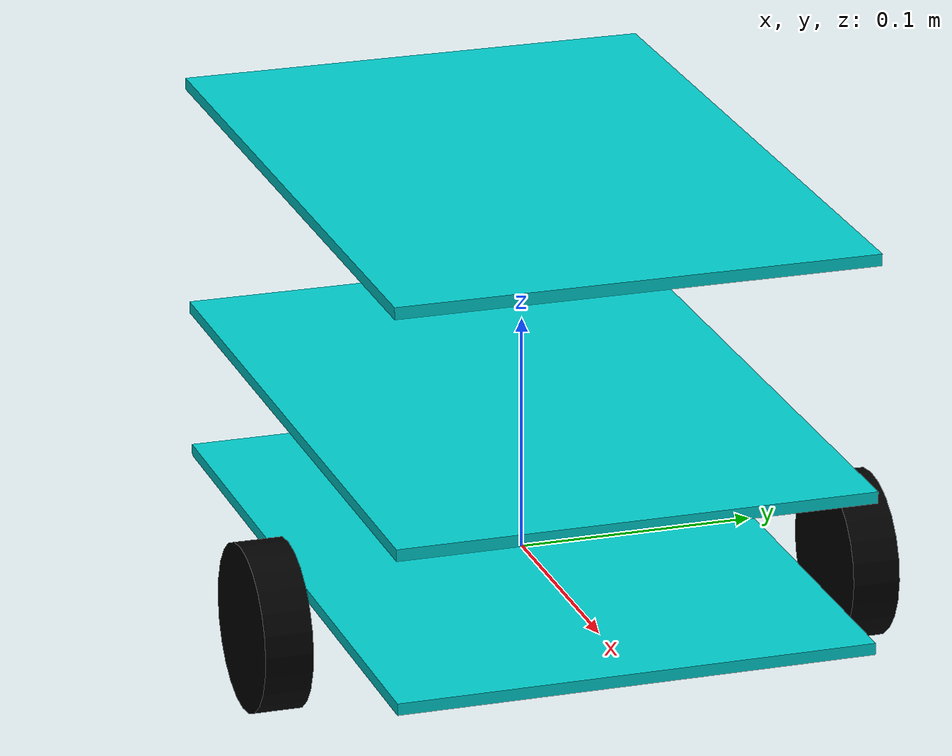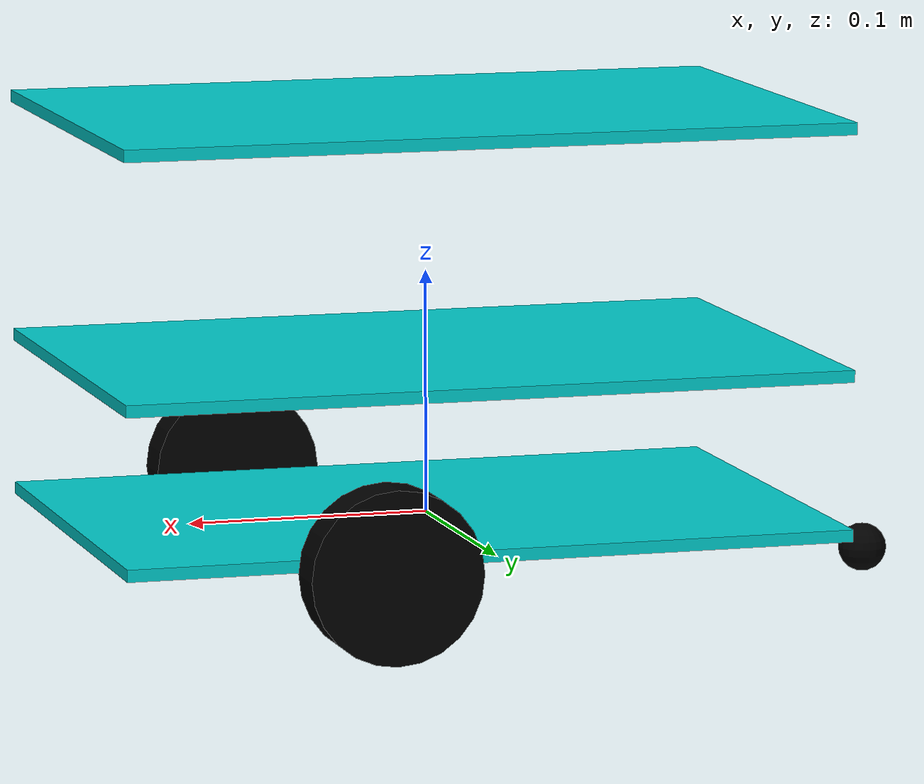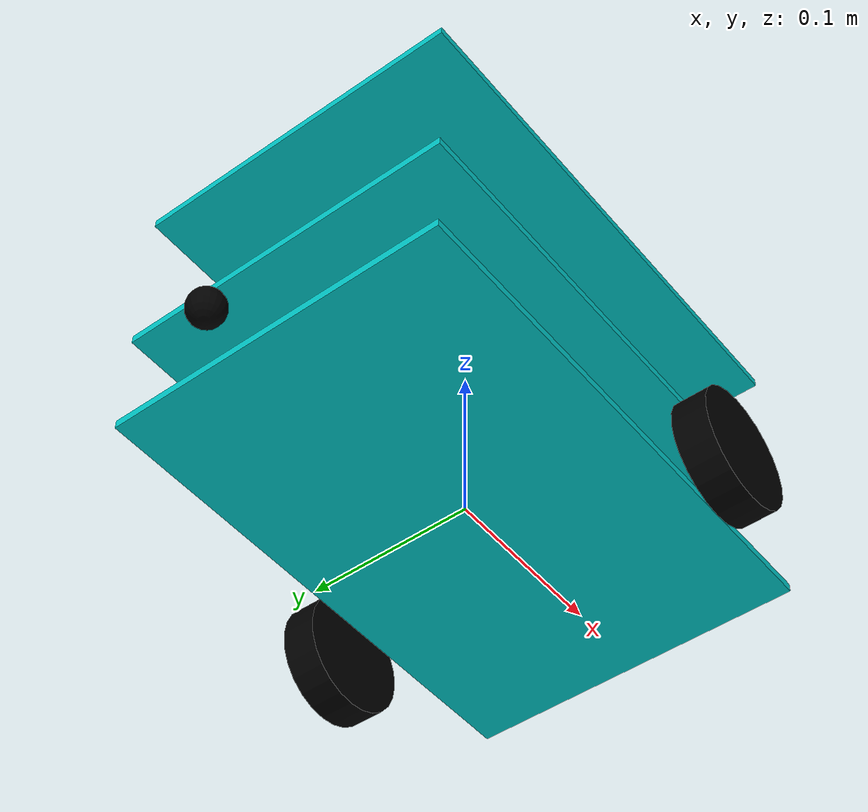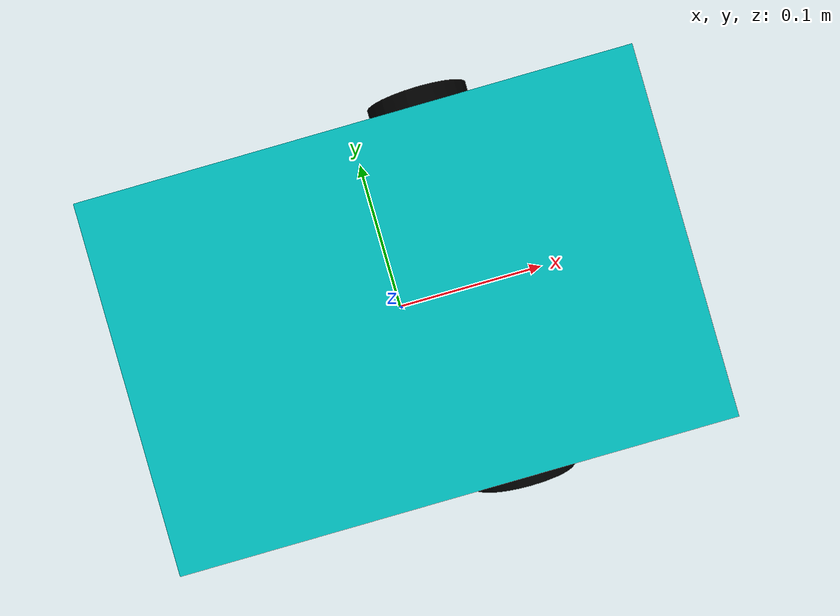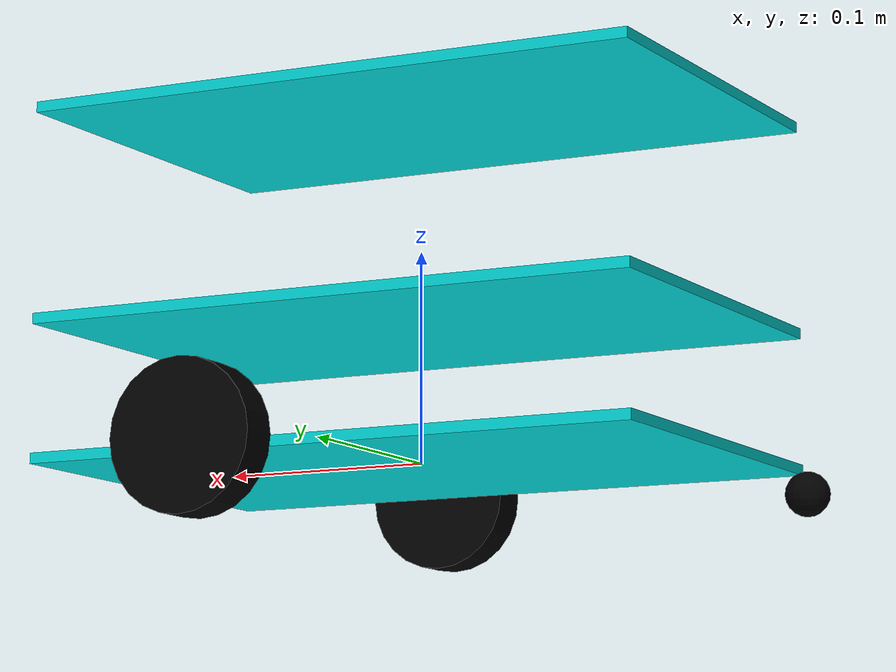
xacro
<?xml version="1.0"?>
<robot xmlns:xacro="http://www.ros.org/wiki/xacro" name="model_1">

	<xacro:property name="size" value="0.3 0.2 0.005" />
	<xacro:property name="collision_box_size" value="0.3 0.2 0.175" />

    <xacro:macro name="default_inertial" params="mass">
		<inertial>
		<mass value="${mass}" />
			<inertia ixx="0.001" ixy="0.0" ixz="0.0" iyy="0.001" iyz="0.0" izz="0.001" />
		</inertial>
	</xacro:macro>

	<material name="blue">
		<color rgba="0 0.8 0.8 1"/>
	</material>
	<material name="black">
		<color rgba="0 0 0 1"/>
	</material>

	<link name="base_link">
		<visual>
			<origin xyz="0 0 0" rpy="0 0 0" />
			<geometry>
				<box size="${size}" />
			</geometry>
			<material name="blue"/>
		</visual>
		<collision>
			<origin xyz="0 0 -0.005" rpy="0 0 0" />
			<geometry>
				<box size="${collision_box_size}" />
			</geometry>
		</collision>
		<xacro:default_inertial mass="0.02"/>
	</link>

	<link name="base_mdl">
		<visual>
			<origin xyz="0 0 0" rpy="0 0 0" />
			<geometry>
				<box size="${size}" />
			</geometry>
			<material name="blue"/>
		</visual>
		<xacro:default_inertial mass="0.02"/>
	</link>

	<joint name="base-base_mdl" type="fixed">
		<origin xyz="0 0 0.065"/>
		<parent link="base_link"/>
		<child link="base_mdl"/>
	</joint>

	<link name="base_top">
		<visual>
			<origin xyz="0 0 0" rpy="0 0 0" />
			<geometry>
				<box size="${size}" />
			</geometry>
			<material name="blue"/>
		</visual>
		<xacro:default_inertial mass="0.02"/>
	</link>

	<joint name="base-base_top" type="fixed">
		<origin xyz="0 0 0.165"/>
		<parent link="base_link"/>
		<child link="base_top"/>
	</joint>

	<link name="right_wheel">
		<visual>
			<origin xyz="0 0 0" rpy="1.57075 0 0" />
			<geometry>
				<cylinder length="0.02" radius="0.035"/>
			</geometry>
			<material name="black"/>
		</visual>
		<xacro:default_inertial mass="0.02"/>
	</link>

	<joint name="base_to_roue_droite" type="continuous">
		<origin xyz="0.05 -0.125 0"/>
		<axis xyz="0 1 0"/>
		<parent link="base_link"/>
		<child link="right_wheel"/>
	</joint>

	<link name="left_wheel">
		<visual>
			<origin xyz="0 0 0" rpy="1.57075 0 0" />
			<geometry>
				<cylinder length="0.02" radius="0.035"/>
			</geometry>
			<material name="black"/>
		</visual>
		<collision>
			<origin xyz="0 0 0" rpy="1.57075 0 0" />
			<geometry>
				<cylinder length="0.02" radius="0.035"/>
			</geometry>
			<material name="black"/>
		</collision>
		<xacro:default_inertial mass="0.02"/>
	</link>

	<joint name="base_to_roue_gauche" type="continuous">
		<origin xyz="0.05 0.125 0"/>
		<axis xyz="0 1 0"/>
		<parent link="base_link"/>
		<child link="left_wheel"/>
	</joint>

	<link name="rear_wheel">
		<visual>
			<origin xyz="0 0 0" rpy="0 0 0" />
			<geometry>
				<sphere radius="0.01"/>
			</geometry>
			<material name="black"/>
		</visual>
		<xacro:default_inertial mass="0.02"/>
	</link>

	<joint name="base-rear_wheel" type="fixed">
		<origin xyz="-0.19 0 -0.025"/>
		<parent link="base_link"/>
		<child link="rear_wheel"/>
	</joint>

</robot>
